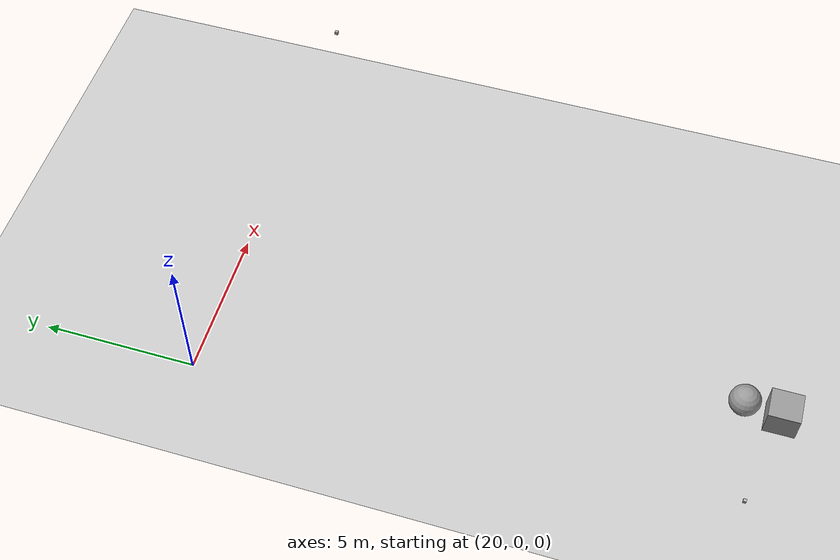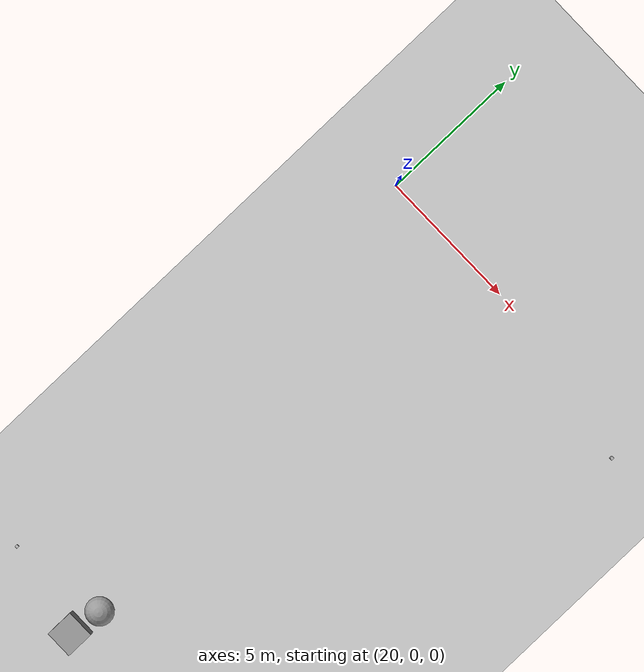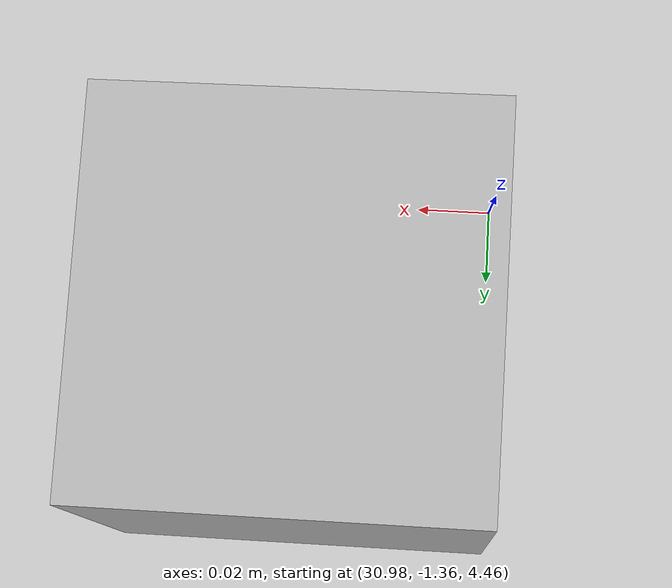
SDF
<sdf version="1.7">
 <world name="default">
  <light name="sun" type="directional">
   <pose>0 0 10 0 -0 0</pose>
   <diffuse>0.8 0.8 0.8 1</diffuse>
   <specular>0.2 0.2 0.2 1</specular>
   <attenuation>
    <range>1000</range>
    <constant>0.9</constant>
    <linear>0.01</linear>
    <quadratic>0.001</quadratic>
   </attenuation>
   <direction>-0.5 0.1 -0.9</direction>
   <spot><inner_angle>0</inner_angle><outer_angle>0</outer_angle><falloff>0</falloff></spot>
  </light>
  <physics type="ode">
   <max_step_size>0.001</max_step_size>
   <real_time_factor>1</real_time_factor>
   <real_time_update_rate>1000</real_time_update_rate>
  </physics>
  <scene><ambient>0.4 0.4 0.4 1</ambient><background>0.7 0.7 0.7 1</background><shadows>1</shadows></scene>
  <spherical_coordinates>
   <surface_model>EARTH_WGS84</surface_model>
   <latitude_deg>0</latitude_deg>
   <longitude_deg>0</longitude_deg>
   <elevation>0</elevation>
   <heading_deg>0</heading_deg>
  </spherical_coordinates>
  <gravity>0 0 -9.8</gravity>
  <magnetic_field>6e-06 2.3e-05 -4.2e-05</magnetic_field>
  <atmosphere type="adiabatic"/>
  <model name="cottage_blender_ground">
   <link name="cottage_blender_ground_link">
    <inertial>
     <mass>1</mass>
     <inertia><ixx>1</ixx><ixy>0</ixy><ixz>0</ixz><iyy>1</iyy><iyz>0</iyz><izz>1</izz></inertia>
    </inertial>
    <collision name="cottage_blender_ground_link_collision">
     <geometry>
      <mesh>
       <scale>1 1 1</scale>
       <uri>/root/cv-gen/gazebo/catkin_ws/src/cottage/cottage_gazebo/meshes/cottage_blender_ground.dae</uri>
      </mesh>
     </geometry>
    </collision>
    <visual name="cottage_blender_ground_link_visual">
     <geometry>
      <mesh>
       <scale>1 1 1</scale>
       <uri>/root/cv-gen/gazebo/catkin_ws/src/cottage/cottage_gazebo/meshes/cottage_blender_ground.dae</uri>
      </mesh>
     </geometry>
    </visual>
   </link>
   <static>1</static>
  </model>
  <light name="sun" type="directional">
   <pose>-41.9296 113.441 10 0 -0 0</pose>
   <diffuse>0.8 0.8 0.8 1</diffuse>
   <specular>0.2 0.2 0.2 1</specular>
   <attenuation>
    <range>1000</range>
    <constant>0.9</constant>
    <linear>0.01</linear>
    <quadratic>0.001</quadratic>
   </attenuation>
   <direction>-0.5 0.1 -0.9</direction>
  </light>
  <model name="distorted_camera_0">
   <link name="link">
    <pose>0.05 0.05 0.05 0 -0 0</pose>
    <inertial>
     <mass>0.1</mass>
     <inertia>
      <ixx>0.000166667</ixx>
      <iyy>0.000166667</iyy>
      <izz>0.000166667</izz>
      <ixy>0</ixy>
      <ixz>0</ixz>
      <iyz>0</iyz>
     </inertia>
    </inertial>
    <collision name="collision"><geometry><box><size>0.1 0.1 0.1</size></box></geometry></collision>
    <visual name="visual"><geometry><box><size>0.1 0.1 0.1</size></box></geometry></visual>
    <sensor name="camera" type="camera">
     <camera>
      <horizontal_fov>1.047</horizontal_fov>
      <image><width>320</width><height>240</height></image>
      <clip><near>0.1</near><far>100</far></clip>
      <distortion>
       <k1>-0.25</k1>
       <k2>0.12</k2>
       <k3>0</k3>
       <p1>-0.00028</p1>
       <p2>-5e-05</p2>
       <center>0.5 0.5</center>
      </distortion>
     </camera>
     <always_on>1</always_on>
     <update_rate>30</update_rate>
     <visualize>1</visualize>
    </sensor>
   </link>
   <pose>19.9669 -17.3996 0.551074 0 -0 0</pose>
  </model>
  <model name="unit_box">
   <pose>23.3205 -18.0478 0.5 0 -0 0</pose>
   <link name="link">
    <inertial>
     <mass>1</mass>
     <inertia>
      <ixx>0.166667</ixx>
      <ixy>0</ixy>
      <ixz>0</ixz>
      <iyy>0.166667</iyy>
      <iyz>0</iyz>
      <izz>0.166667</izz>
     </inertia>
    </inertial>
    <collision name="collision"><geometry><box><size>1 1 1</size></box></geometry></collision>
    <visual name="visual">
     <geometry><box><size>1 1 1</size></box></geometry>
     <material>
      <script><name>Gazebo/Grey</name><uri>file://media/materials/scripts/gazebo.material</uri></script>
     </material>
    </visual>
   </link>
  </model>
  <model name="unit_sphere">
   <pose>23.4594 -16.8652 0.5 0 -0 0</pose>
   <link name="link">
    <inertial>
     <mass>1</mass>
     <inertia><ixx>0.1</ixx><ixy>0</ixy><ixz>0</ixz><iyy>0.1</iyy><iyz>0</iyz><izz>0.1</izz></inertia>
    </inertial>
    <collision name="collision"><geometry><sphere><radius>0.5</radius></sphere></geometry></collision>
    <visual name="visual">
     <geometry><sphere><radius>0.5</radius></sphere></geometry>
     <material>
      <script><name>Gazebo/Grey</name><uri>file://media/materials/scripts/gazebo.material</uri></script>
     </material>
    </visual>
   </link>
  </model>
  <model name="distorted_camera">
   <link name="link">
    <pose>0.05 0.05 0.05 0 -0 0</pose>
    <inertial>
     <mass>0.1</mass>
     <inertia>
      <ixx>0.000166667</ixx>
      <iyy>0.000166667</iyy>
      <izz>0.000166667</izz>
      <ixy>0</ixy>
      <ixz>0</ixz>
      <iyz>0</iyz>
     </inertia>
    </inertial>
    <collision name="collision"><geometry><box><size>0.1 0.1 0.1</size></box></geometry></collision>
    <visual name="visual"><geometry><box><size>0.1 0.1 0.1</size></box></geometry></visual>
    <sensor name="camera" type="camera">
     <camera>
      <horizontal_fov>1.047</horizontal_fov>
      <image><width>320</width><height>240</height></image>
      <clip><near>0.1</near><far>100</far></clip>
      <distortion>
       <k1>-0.25</k1>
       <k2>0.12</k2>
       <k3>0</k3>
       <p1>-0.00028</p1>
       <p2>-5e-05</p2>
       <center>0.5 0.5</center>
      </distortion>
     </camera>
     <always_on>1</always_on>
     <update_rate>30</update_rate>
     <visualize>1</visualize>
    </sensor>
   </link>
   <pose>31.0782 -1.26424 4.45118 0 -0.068546 3.1317</pose>
  </model>
 </world>
</sdf>
